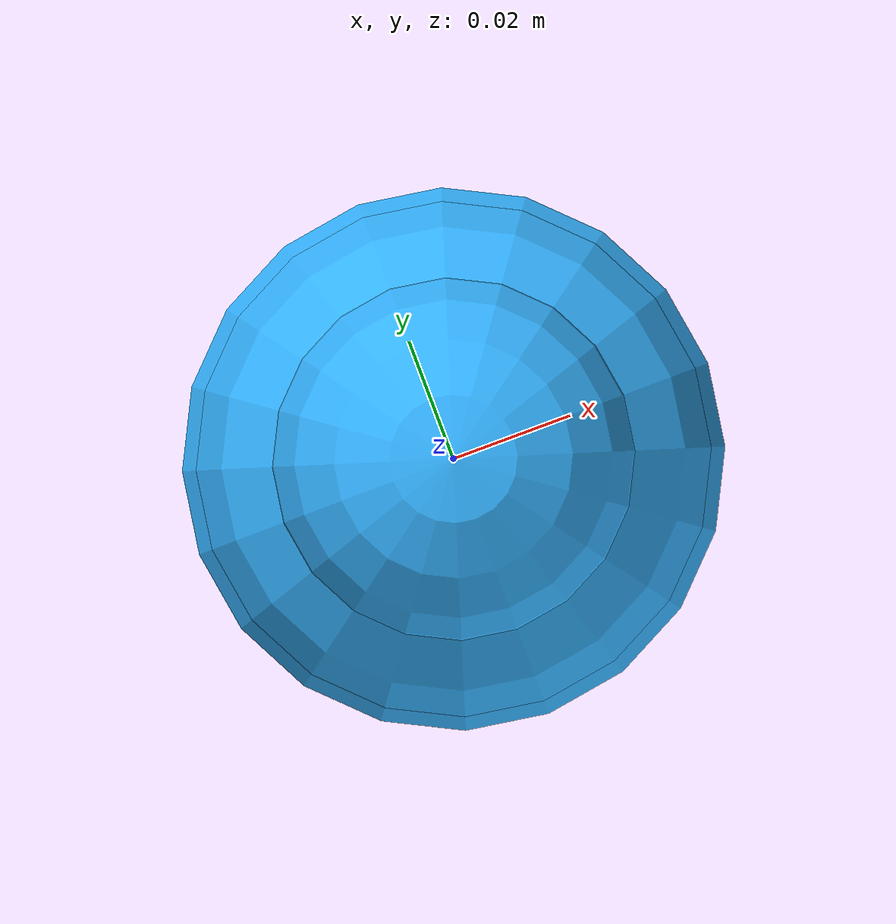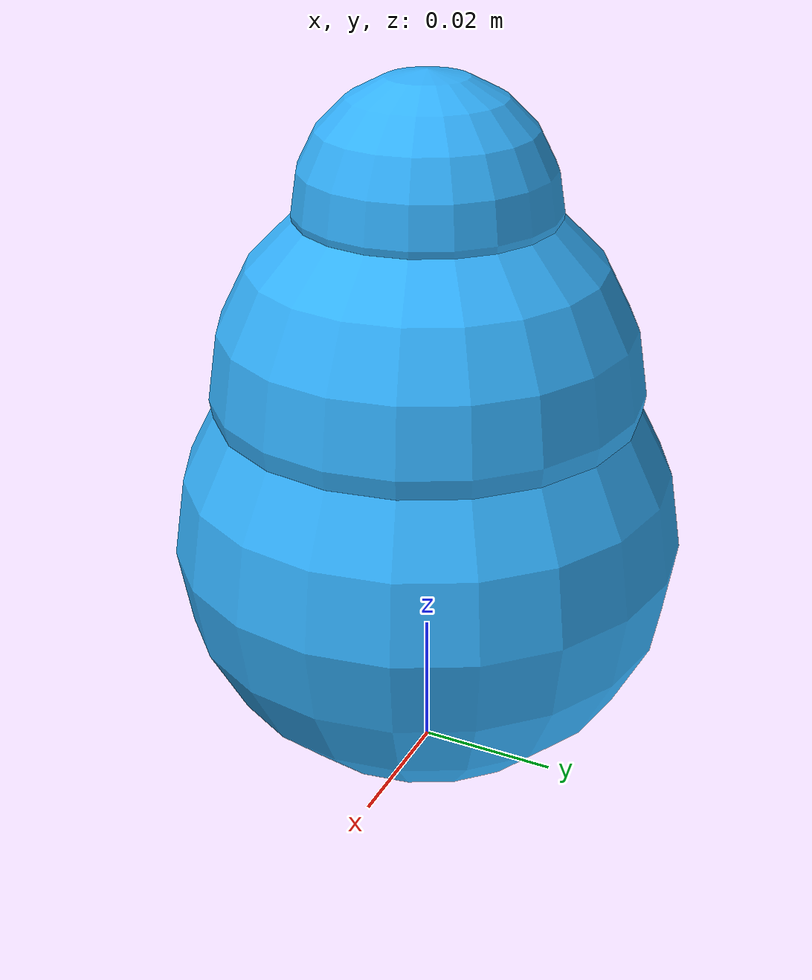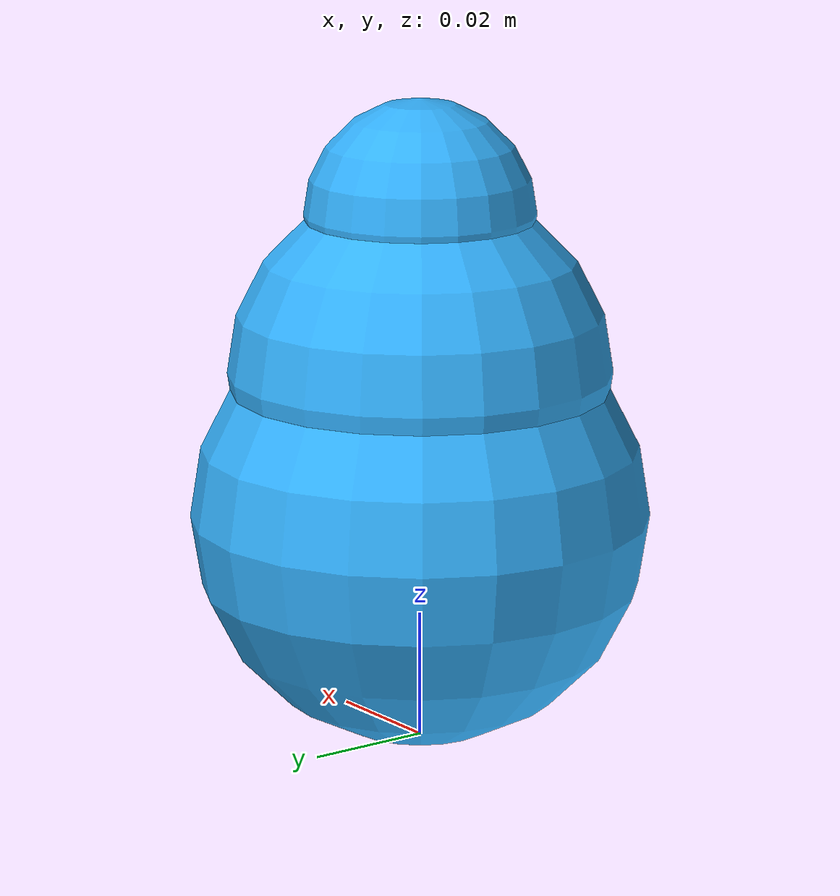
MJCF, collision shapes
<mujoco model="ycb_pear">
  <compiler autolimits="true"/>
  <asset>
    <mesh name="ycb_pear_visual_mesh"
          file="/Users/damirnurtdinov/Desktop/My Courses/Диплом/CDPR-Dataset/external_assets/ycb_dataset/ycb/pear/textured.obj"/>
    <texture name="ycb_pear_texture" type="2d"
             file="/Users/damirnurtdinov/Desktop/My Courses/Диплом/CDPR-Dataset/external_assets/ycb_dataset/ycb/pear/texture_map.png"/>
    <material name="ycb_pear_material" texture="ycb_pear_texture"/>
  </asset>
  <default>
    <default class="object_collision">
      <geom contype="1" conaffinity="7" group="3" friction="0.9 0.01 0.001"
            condim="3" solref="0.008 1" solimp="0.90 0.95 0.001"
            margin="0.001" rgba="0.20 0.70 1.00 0.28"/>
    </default>
    <default class="object_visual">
      <geom contype="0" conaffinity="0" group="1"/>
    </default>
  </default>
  <worldbody>
    <body name="ycb_pear" pos="0 0 0.040">
      <freejoint/>
      <inertial pos="0 0 0" mass="0.10" diaginertia="0.000065 0.000065 0.000051"/>
      <geom name="ycb_pear_collision_lower" class="object_collision" type="sphere" size="0.036" pos="0 0 -0.004"/>
      <geom name="ycb_pear_collision_mid" class="object_collision" type="sphere" size="0.030" pos="0 0 0.019"/>
      <geom name="ycb_pear_collision_neck" class="object_collision" type="sphere" size="0.018" pos="0 0 0.044"/>
      <geom name="ycb_pear_visual" class="object_visual" type="mesh"
            mesh="ycb_pear_visual_mesh" material="ycb_pear_material"/>
    </body>
  </worldbody>
</mujoco>
